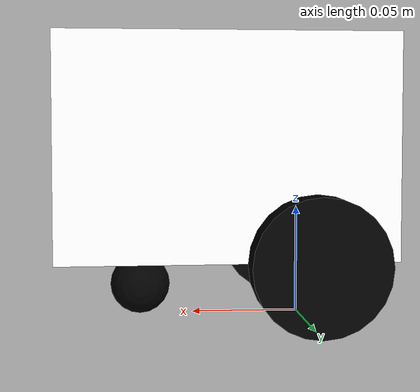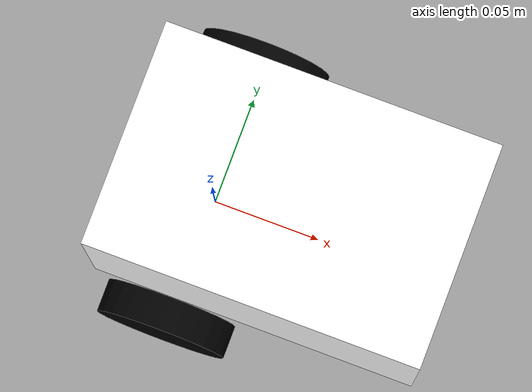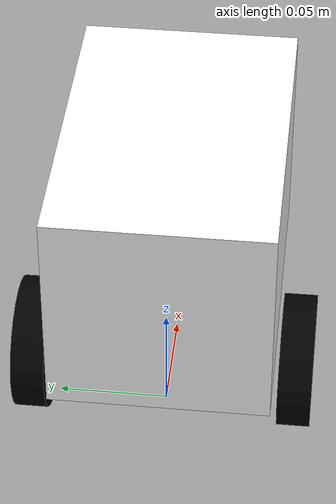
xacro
<?xml version="1.0"?>
<robot name="diff_drive_robot" xmlns:xacro="http://www.ros.org/wiki/xacro">

    <!--
    Declare optional controller config path which points to parameters YAML. Default value
    of '' disables control
    -->
    <xacro:arg name="controller_config_path" default=""/>
    <!--
    Declare optional hardware type ('real' or 'simulated') to signal which hardware interface
    should be used. Default value of '' disables control
    -->
    <xacro:arg name="hardware_type" default=""/>
    <!-- Promote arguments to properties for use in expressions -->
    <xacro:property name="controller_config_path" value="$(arg controller_config_path)"/>
    <xacro:property name="hardware_type" value="$(arg hardware_type)"/>
    <!-- Validate hardware type value -->
    <xacro:if value="${hardware_type not in ['', 'real', 'simulated']}">
        <!--
        Use undefined macro to raise error during xacro processing and signal that hardware
        type is invalid -->
        <xacro:invalid_hardware_type/>
    </xacro:if>
    <!--
    Enable control and define relevant tags only if controller YAML path is non-empty and
    hardware type is both non-empty and valid -->
    <xacro:property
        name="use_control"
        value="${controller_config_path != '' and hardware_type in ['real', 'simulated']}"
    />

    <!-- Get physical constants and Gazebo physics tags -->
     <xacro:include filename="physics.xacro"/>

    <!-- Define base link, chassis, and caster -->
    <xacro:include filename="base.xacro"/>

    <!-- Get macro to define driven wheel links and their joints to the chassis -->
    <xacro:include filename="wheels.xacro"/>
    <xacro:driven_wheel prefix="left" use_control="${use_control}"/>
    <xacro:driven_wheel prefix="right" use_control="${use_control}"/>

    <!-- Define ros2_control tag and Gazebo control plugin if control is switched on -->
    <xacro:if value="${use_control}">
        <xacro:include filename="control.xacro"/>
    </xacro:if>

</robot>

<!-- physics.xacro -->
<robot xmlns:xacro="http://www.ros.org/wiki/xacro">

    <!-- Constants for dynamics and motors -->
    <xacro:property name="MAX_LINEAR_VELOCITY" value="0.5"/>  <!-- m/s - Use with wheel radius to calculate corresponding max angular velocity -->
    <xacro:property name="MOTOR_MAX_TORQUE" value="0.5"/>  <!-- Nm -->

    <!-- Set friction coefficients for driven wheels and caster -->
    <gazebo reference="left_wheel_link">
        <mu1 value="1.0"/>
        <mu2 value="1.0"/>
    </gazebo>
    <gazebo reference="right_wheel_link">
        <mu1 value="1.0"/>
        <mu2 value="1.0"/>
    </gazebo>
    <gazebo reference="caster_link">
        <mu1 value="0.001"/>
        <mu2 value="0.001"/>
    </gazebo>

</robot>

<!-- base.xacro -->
<robot xmlns:xacro="http://www.ros.org/wiki/xacro">

    <xacro:include filename="macros.xacro"/>
    <!-- Get wheel constants -->
     <xacro:include filename="wheels.xacro"/>

    <!-- Chassis constants -->
    <xacro:property name="CHASSIS_LENGTH" value="0.15"/>  <!-- Along x axis -->
    <xacro:property name="CHASSIS_WIDTH" value="0.10"/>  <!-- Along y axis -->
    <xacro:property name="CHASSIS_HEIGHT" value="0.10"/>  <!-- Along z axis -->
    <xacro:property name="CHASSIS_MASS" value="4.75"/>
    <!-- Caster constants (JOINT_Y left out because the joint is centered along chassis width) -->
    <xacro:property name="CASTER_RADIUS" value="0.014"/>
    <xacro:property name="CASTER_JOINT_X" value="${CHASSIS_LENGTH / 4}"/>
    <xacro:property name="CASTER_JOINT_Z" value="${-CHASSIS_HEIGHT / 2 - (DRIVEN_WHEEL_RADIUS - CASTER_RADIUS)}"/> <!-- Caster will touch the ground and leave a gap from the chassis -->
    <xacro:property name="CASTER_MASS" value="0.05"/>

    <link name="base_link"/>

    <!-- Main body of the robot -->
    <link name="chassis_link">
        <xacro:box_inertial length="${CHASSIS_LENGTH}" width="${CHASSIS_WIDTH}" height="${CHASSIS_HEIGHT}" mass="${CHASSIS_MASS}"/>
        <visual>
            <origin xyz="0 0 0" rpy="0 0 0"/>
            <geometry>
                <box size="${CHASSIS_LENGTH} ${CHASSIS_WIDTH} ${CHASSIS_HEIGHT}"/>
            </geometry>
            <material name="white">
                <color rgba="1.0 1.0 1.0 1.0"/>
            </material>
        </visual>
        <collision>
            <origin xyz="0 0 0" rpy="0 0 0"/>
            <geometry>
                <box size="${CHASSIS_LENGTH} ${CHASSIS_WIDTH} ${CHASSIS_HEIGHT}"/>
            </geometry>
        </collision>
    </link>

    <joint name="base_to_chassis_joint" type="fixed">
        <parent link="base_link"/>
        <child link="chassis_link"/>
        <origin xyz="${CHASSIS_LENGTH / 4} 0 ${CHASSIS_HEIGHT / 2 + DRIVEN_WHEEL_RADIUS}" rpy="0 0 0"/>
    </joint>

    <link name="caster_link">
        <xacro:sphere_inertial radius="${CASTER_RADIUS}" mass="${CASTER_MASS}"/>
        <visual>
            <origin xyz="0 0 0" rpy="0 0 0"/>
            <geometry>
                <sphere radius="${CASTER_RADIUS}"/>
            </geometry>
            <material name="black">
                <color rgba="0 0 0 1.0"/>
            </material>
        </visual>
        <collision>
            <origin xyz="0 0 0" rpy="0 0 0"/>
            <geometry>
                <sphere radius="${CASTER_RADIUS}"/>
            </geometry>
        </collision>
    </link>

    <joint name="chassis_to_caster_joint" type="fixed">
        <parent link="chassis_link"/>
        <child link="caster_link"/>
        <origin xyz="${CASTER_JOINT_X} 0 ${CASTER_JOINT_Z}" rpy="${-math.pi / 2} 0 0"/>
    </joint>

</robot>

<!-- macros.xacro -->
<robot xmlns:xacro="http://www.ros.org/wiki/xacro">

    <!-- Cylinder inertial tag with mass and moment of intertia matrix -->
    <xacro:macro name="cylinder_inertial" params="radius length mass">
        <inertial>
            <mass value="${mass}"/>
            <inertia
                ixx="${(mass * (3 * radius**2 + length**2)) / 12}" ixy="0" ixz="0"
                iyy="${(mass * (3 * radius**2 + length**2)) / 12}" iyz="0"
                izz="${(mass * radius**2) / 2}"
            />
        </inertial>
    </xacro:macro>

    <!-- Cuboid inertial tag with mass and moment of intertia matrix -->
    <xacro:macro name="box_inertial" params="length width height mass">
        <inertial>
            <mass value="${mass}"/>
            <inertia
                ixx="${(mass * (width**2 + height**2)) / 12}" ixy="0" ixz="0"
                iyy="${(mass * (length**2 + height**2)) / 12}" iyz="0"
                izz="${(mass * (length**2 + width**2)) / 12}"
            />
        </inertial>
    </xacro:macro>

    <!-- Sphere inertial tag with mass and moment of intertia matrix -->
    <xacro:macro name="sphere_inertial" params="radius mass">
        <inertial>
            <mass value="${mass}"/>
            <inertia
                ixx="${(2 / 5) * mass * radius**2}" ixy="0" ixz="0"
                iyy="${(2 / 5) * mass * radius**2}" iyz="0"
                izz="${(2 / 5) * mass * radius**2}"
            />
        </inertial>
    </xacro:macro>

</robot>

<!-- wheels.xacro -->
<robot xmlns:xacro="http://www.ros.org/wiki/xacro">

    <xacro:include filename="physics.xacro"/>
    <xacro:include filename="macros.xacro"/>

    <!-- Driven wheel constants with offset from chassis included in each joint origin -->
    <xacro:property name="DRIVEN_WHEEL_RADIUS" value="0.03"/>
    <xacro:property name="DRIVEN_WHEEL_WIDTH" value="0.015"/>
    <xacro:property name="DRIVEN_WHEEL_OFFSET" value="0.01"/>
    <xacro:property name="DRIVEN_WHEEL_JOINT_X" value="${-CHASSIS_LENGTH / 4}"/>
    <xacro:property name="DRIVEN_WHEEL_JOINT_Y_ABS" value="${CHASSIS_WIDTH / 2 + DRIVEN_WHEEL_OFFSET}"/>  <!-- Use as +ve for LHS and -ve for RHS -->
    <xacro:property name="DRIVEN_WHEEL_JOINT_Z" value="${-CHASSIS_HEIGHT / 2}"/>
    <xacro:property name="DRIVEN_WHEEL_MASS" value="0.1"/>

    <xacro:macro name="driven_wheel" params="prefix use_control">

        <xacro:if value="${prefix == 'left'}">
            <xacro:property name="sign" value="1"/>
        </xacro:if>
        <xacro:if value="${prefix == 'right'}">
            <xacro:property name="sign" value="-1"/>
        </xacro:if>

        <xacro:property name="joint_y" value="${sign * DRIVEN_WHEEL_JOINT_Y_ABS}"/>
        <xacro:property name="joint_roll" value="${-math.pi / 2}"/>  <!-- Orient the wheel correctly for differential drive kinematics -->

        <!-- Driven wheel -->
        <link name="${prefix}_wheel_link">
            <xacro:cylinder_inertial radius="${DRIVEN_WHEEL_RADIUS}" length="${DRIVEN_WHEEL_WIDTH}" mass="${DRIVEN_WHEEL_MASS}"/>
            <visual>
                <origin xyz="0 0 0" rpy="0 0 0"/>
                <geometry>
                    <cylinder length="${DRIVEN_WHEEL_WIDTH}" radius="${DRIVEN_WHEEL_RADIUS}"/>
                </geometry>
                <material name="black">
                    <color rgba="0 0 0 1.0"/>
                </material>
            </visual>
            <collision>
                <origin xyz="0 0 0" rpy="0 0 0"/>
                <geometry>
                    <cylinder length="${DRIVEN_WHEEL_WIDTH}" radius="${DRIVEN_WHEEL_RADIUS}"/>
                </geometry>
            </collision>
        </link>

        <!-- Join chassis to wheel with an offset to account for DC rotor -->
        <joint name="chassis_to_${prefix}_wheel_joint" type="continuous">
            <parent link="chassis_link"/>
            <child link="${prefix}_wheel_link"/>
            <origin xyz="${DRIVEN_WHEEL_JOINT_X} ${joint_y} ${DRIVEN_WHEEL_JOINT_Z}" rpy="${joint_roll} 0 0"/>
            <axis xyz="0 0 1"/>
            <limit effort="${MOTOR_MAX_TORQUE}" velocity="${MAX_LINEAR_VELOCITY / DRIVEN_WHEEL_RADIUS}"/>
        </joint>

        <xacro:if value="${use_control}">
            <!-- Transmission for control -->
            <transmission name="${prefix}_wheel_trans">
                <type>transmission_interface/SimpleTransmission</type>
                <joint name="chassis_to_${prefix}_wheel_joint"/>
                <actuator name="${prefix}_motor">
                    <mechanicalReduction>1</mechanicalReduction>
                </actuator>
            </transmission>
        </xacro:if>

    </xacro:macro>

</robot>
